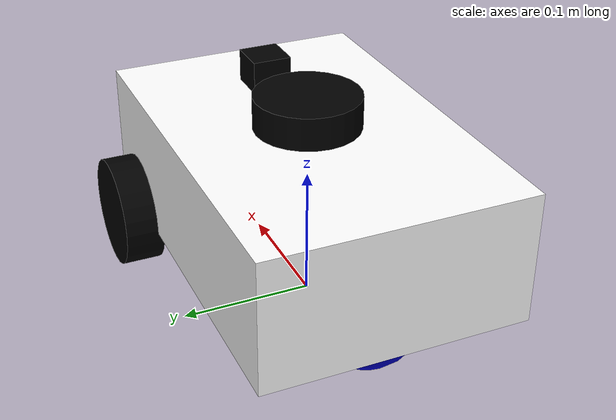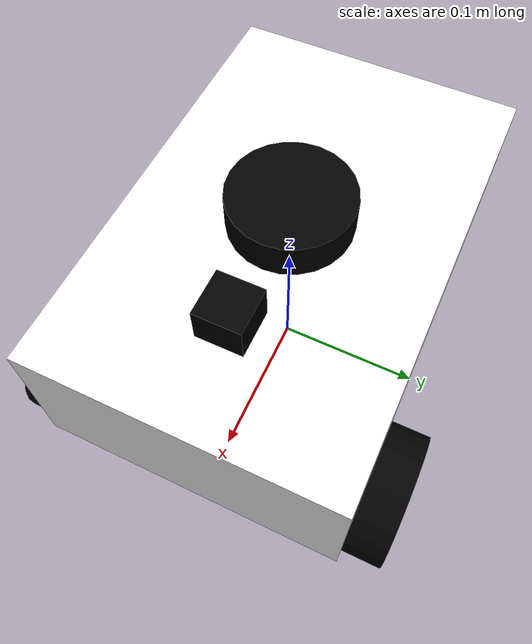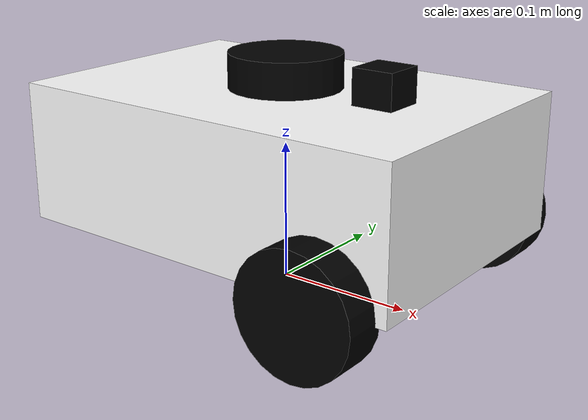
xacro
<?xml version="1.0"?>
<robot xmlns:xacro="http://www.ros.org/wiki/xacro" name="butler">

    <xacro:include filename="$(find butler_bot)/urdf/butler.xacro"/>
    <xacro:include filename="$(find butler_bot)/urdf/lidar.xacro"/>
    <xacro:include filename="$(find butler_bot)/urdf/camera.xacro"/>

</robot>

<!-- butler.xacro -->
<robot xmlns:xacro="http://www.ros.org/wiki/xacro">

  <!-- PROPERTIES (tweak here if needed) -->
  <xacro:property name="wheel_radius" value="0.0425"/>
  <xacro:property name="wheel_width"  value="0.03"/>
  <xacro:property name="wheel_separation" value="0.22"/>  <!-- distance between left and right wheel centers -->
  <xacro:property name="body_length" value="0.30"/>
  <xacro:property name="body_width"  value="0.20"/>
  <xacro:property name="body_height" value="0.10"/>
  <xacro:property name="base_z" value="0.09"/>

  <!-- MATERIALS -->
  <material name="blue"><color rgba="0 0 0.8 1"/></material>
  <material name="black"><color rgba="0 0 0 1"/></material>
  <material name="white"><color rgba="1 1 1 1"/></material>

  <!-- BASE LINK -->
  <link name="base_link">
    <visual>
      <origin xyz="0 0 ${base_z}"/>
      <geometry>
        <box size="${body_length} ${body_width} ${body_height}"/>
      </geometry>
      <material name="white"/>
    </visual>

    <collision>
      <origin xyz="0 0 ${base_z}"/>
      <geometry>
        <box size="${body_length} ${body_width} ${body_height}"/>
      </geometry>
    </collision>

    <inertial>
      <!-- Use a reasonable simple inertial (tweak for realistic sim) -->
      <origin xyz="0 0 ${base_z}"/>
      <mass value="3.0"/>
      <inertia ixx="0.03" iyy="0.03" izz="0.03" ixy="0.0" ixz="0.0" iyz="0.0"/>
    </inertial>
  </link>

  <!-- BASE FOOTPRINT (ground-level frame for navigation) -->
  <link name="base_footprint"/>

  <joint name="base_footprint_joint" type="fixed">
    <parent link="base_link"/>
    <child link="base_footprint"/>
    <origin xyz="0 0 -${base_z}"/>
  </joint>

  <!-- RIGHT WHEEL -->
  <link name="right_wheel">
    <visual>
      <!-- Cylinder oriented so rotation axis is Y (we rotate about Y) -->
      <origin rpy="1.5708 0 0" xyz="0 0 0"/>
      <geometry>
        <cylinder radius="${wheel_radius}" length="${wheel_width}"/>
      </geometry>
      <material name="black"/>
    </visual>

    <collision>
      <origin rpy="1.5708 0 0" xyz="0 0 0"/>
      <geometry>
        <cylinder radius="${wheel_radius}" length="${wheel_width}"/>
      </geometry>
    </collision>

    <inertial>
      <origin xyz="0 0 0"/>
      <mass value="0.3"/>
      <!-- approximate wheel inertia -->
      <inertia ixx="0.0005" iyy="0.0005" izz="0.0005" ixy="0.0" ixz="0.0" iyz="0.0"/>
    </inertial>
  </link>

  <joint name="body_right_wheel" type="continuous">
    <parent link="base_link"/>
    <child link="right_wheel"/>
    <!-- place wheel at front-right of base (x, y, z) -->
    <origin xyz="0.10 0.11 ${wheel_radius}"/>
    <!-- rotation axis: Y (spins to drive +x) -->
    <axis xyz="0 1 0"/>
  </joint>

  <!-- LEFT WHEEL -->
  <link name="left_wheel">
    <visual>
      <origin rpy="1.5708 0 0" xyz="0 0 0"/>
      <geometry>
        <cylinder radius="${wheel_radius}" length="${wheel_width}"/>
      </geometry>
      <material name="black"/>
    </visual>

    <collision>
      <origin rpy="1.5708 0 0" xyz="0 0 0"/>
      <geometry>
        <cylinder radius="${wheel_radius}" length="${wheel_width}"/>
      </geometry>
    </collision>

    <inertial>
      <origin xyz="0 0 0"/>
      <mass value="0.3"/>
      <inertia ixx="0.0005" iyy="0.0005" izz="0.0005" ixy="0.0" ixz="0.0" iyz="0.0"/>
    </inertial>
  </link>

  <joint name="body_left_wheel" type="continuous">
    <parent link="base_link"/>
    <child link="left_wheel"/>
    <origin xyz="0.10 -0.11 ${wheel_radius}"/>
    <axis xyz="0 1 0"/>
  </joint>

  <!-- CENTER SUPPORT (non-driven) -->
  <link name="center_spherical_wheel" type = "fixed">
    <visual>
      <origin xyz="-0.10 0 ${wheel_radius}"/>
      <geometry>
        <sphere radius="0.04"/>
      </geometry>
      <material name="blue"/>
    </visual>

    <collision>
      <origin xyz="-0.10 0 ${wheel_radius}"/>
      <geometry>
        <sphere radius="0.04"/>
      </geometry>
    </collision>

    <inertial>
      <mass value="0.05"/>
      <inertia ixx="1e-4" iyy="1e-4" izz="1e-4" ixy="0" ixz="0" iyz="0"/>
    </inertial>
  </link>
  <gazebo reference="center_spherical_wheel">
        <material>Gazebo/Black</material>
        <mu1 value="0.001"/>
        <mu2 value="0.001"/>
  </gazebo>

  <joint name="body_center_spherical_wheel" type="fixed">
    <parent link="base_link"/>
    <child link="center_spherical_wheel"/>
  </joint>

  <!-- Optional: simple placeholder collision geometry for wheels if needed -->
  <!-- (Already done above by using cylinder collision) -->

  <!--
       GAZEBO PLUGINS (for ROS2 integration)
 -->

  <!-- Differential-drive plugin: listens to /cmd_vel and actuates left/right joints -->
  <gazebo>
    <plugin name="gazebo_diff_drive" filename="libgazebo_ros_diff_drive.so">
      <ros>
        <namespace>/</namespace>
        <!-- ensure this matches where you will publish teleop cmd_vel -->
        <remapping>cmd_vel:=/cmd_vel</remapping>
      </ros>

      <!-- wheel iformation-->
      <left_joint>body_right_wheel</left_joint>
      <right_joint>body_left_wheel</right_joint>
      <wheel_separation>${wheel_separation}</wheel_separation>
      <wheel_diameter>0.08</wheel_diameter>

      <!-- limits-->
      <max_wheel_torque>5.0</max_wheel_torque>
      <max_wheel_acceleration>10.0</max_wheel_acceleration>

      <!--output-->
      <odometry_frame>odom</odometry_frame>
      <robot_base_frame>base_link</robot_base_frame>
      <publish_odometry>true</publish_odometry>
      <publish_wheel_tf>true</publish_wheel_tf> <!-- wheel->base_link TF -->
      <publish_odom_tf>true</publish_odom_tf>   <!-- odom->base_link TF -->

    </plugin>
  </gazebo>

</robot>

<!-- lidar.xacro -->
<robot xmlns:xacro="http://www.ros.org/wiki/xacro" >

    <link name="laser_frame">
        <visual>
            <!-- Cylinder oriented so rotation axis is Y (we rotate about Y) -->
            <origin rpy="0 0 0" xyz="0 0 0"/>
            <geometry>
                <cylinder radius="0.04" length="0.03"/>
            </geometry>
            <material name="black"/>
        </visual>

        <collision>
            <origin rpy="0 0 0" xyz="0 0 0"/>
            <geometry>
                <cylinder radius="0.04" length="0.03"/>
            </geometry>
        </collision>

    </link>

    <joint name="laser_joint" type="fixed">
        <parent link="base_link"/>
        <child link="laser_frame"/>
        <!-- place wheel at front-right of base (x, y, z) -->
        <origin xyz="0.0 0.0 0.15"/>
  </joint>

    <gazebo reference="laser_frame">
        <material>Gazebo/Red</material>

        <sensor name="laser" type="ray">
            <pose> 0 0 0 0 0 0 </pose>
            <visualize>true</visualize>
            <update_rate>10</update_rate>
            <ray>
                <scan>
                    <horizontal>
                        <samples>360</samples>
                        <min_angle>-3.14</min_angle>
                        <max_angle>3.14</max_angle>
                    </horizontal>
                </scan>
                <range>
                    <min>0.2</min>
                    <max>12</max>
                </range>
            </ray>
            <plugin name="laser_controller" filename="libgazebo_ros_ray_sensor.so">
                <ros>
                    <remapping>~/out:=/scan</remapping>
                </ros>
                <output_type>sensor_msgs/LaserScan</output_type>
                <frame_name>laser_frame</frame_name>
            </plugin>
        </sensor>
    </gazebo>

</robot>

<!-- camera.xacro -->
<robot xmlns:xacro="http://www.ros.org/wiki/xacro" >

    <link name="camera_link">
        <visual>
            <origin rpy="0 0 0" xyz="0 0 0"/>
            <geometry>
                <box size="0.03 0.03 0.03"/>
            </geometry>
            <material name="black"/>
        </visual>

        <collision>
            <origin rpy="1.5708 0 0" xyz="0 0 0"/>
            <geometry>
                <box size="0.03 0.03 0.03"/>
            </geometry>
        </collision>

    </link>

    <joint name="camera_joint" type="fixed">
        <parent link="base_link"/>
        <child link="camera_link"/>
        <origin xyz="0.08 0.0 0.15" rpy="0 0 0"/>
    </joint>

    <joint name="camera_optical_joint" type="fixed">
        <parent link="camera_link"/>
        <child link="camera_link_optical"/>
        <origin xyz="0.08 0 0.15" rpy="${-pi/2} 0 ${pi/2}"/>
    </joint>

    <link name="camera_link_optical"></link>

    <gazebo reference="camera_link">
        <material>Gazebo/Red</material>

        <sensor name="camera" type="camera">
            <pose> 0 0 0 0 0 0 </pose>
            <visualize>true</visualize>
            <update_rate>10</update_rate>
            <camera>
                <horizontal_fov>1.089</horizontal_fov>
                <image>
                    <format>R8G8B8</format>
                    <width>640</width>
                    <height>480</height>
                </image>
                <clip>
                    <near>0.05</near>
                    <far>8.0</far>
                </clip>
            </camera>
            <plugin name="camera_controller" filename="libgazebo_ros_camera.so">
                <frame_name>camera_link_optical</frame_name>
            </plugin>
        </sensor>
    </gazebo>

</robot>
